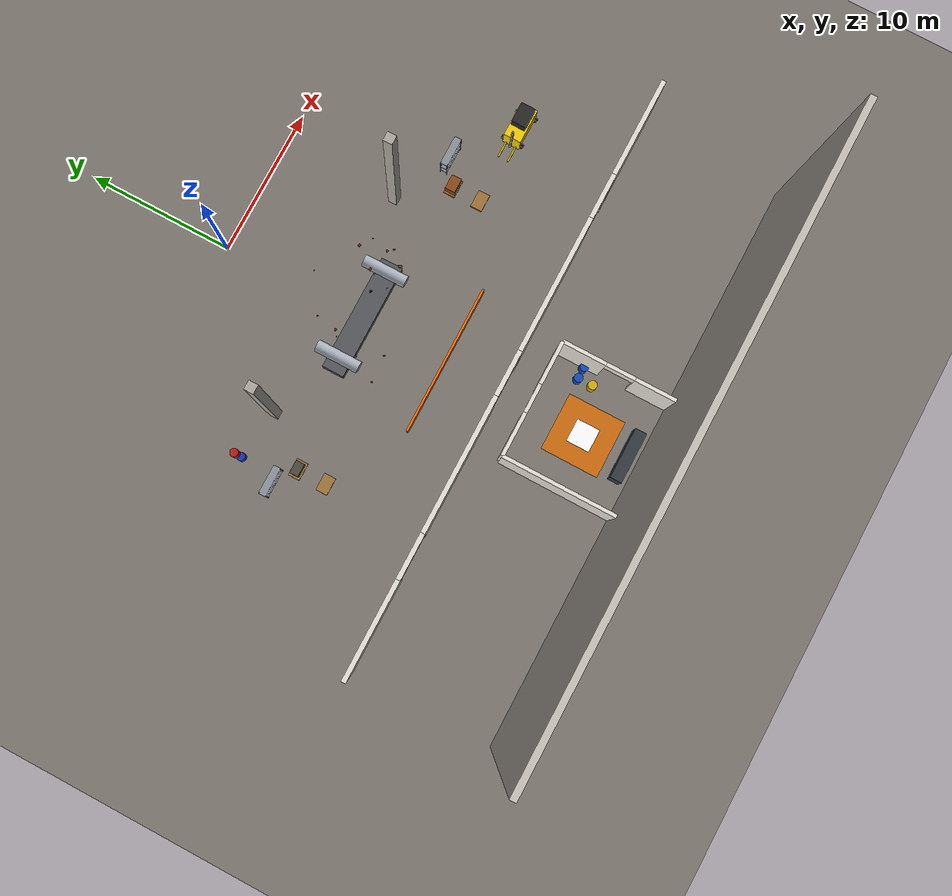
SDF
<sdf version="1.7">
 <world name="wind_tower_world">
  <model name="ground_plane">
   <static>true</static>
   <link name="link">
    <collision name="collision">
     <geometry><plane><normal>0 0 1</normal><size>200 200</size></plane></geometry>
     <surface>
      <friction><ode><mu>0.8</mu><mu2>0.8</mu2></ode></friction>
      <contact><ode><kp>500000</kp><kd>100</kd><max_vel>0.5</max_vel><min_depth>0.002</min_depth></ode></contact>
     </surface>
    </collision>
    <visual name="visual">
     <geometry><plane><normal>0 0 1</normal><size>200 200</size></plane></geometry>
     <material>
      <ambient>0.38 0.37 0.35 1</ambient>
      <diffuse>0.48 0.46 0.43 1</diffuse>
      <specular>0.05 0.05 0.05 1</specular>
     </material>
    </visual>
   </link>
  </model>
  <model name="wall_south">
   <static>true</static>
   <pose>0 -30 9 0 0 0</pose>
   <link name="link">
    <collision name="col"><geometry><box><size>40 0.4 18</size></box></geometry></collision>
    <visual name="vis">
     <geometry><box><size>40 0.4 18</size></box></geometry>
     <material>
      <ambient>0.72 0.70 0.66 1</ambient>
      <diffuse>0.78 0.76 0.72 1</diffuse>
      <specular>0.03 0.03 0.03 1</specular>
     </material>
    </visual>
   </link>
  </model>
  <model name="sep_south_LE">
   <static>true</static>
   <pose>-16.75 -20 4 0 0 0</pose>
   <link name="link">
    <collision name="col"><geometry><box><size>6.5 0.3 8</size></box></geometry></collision>
    <visual name="vis">
     <geometry><box><size>6.5 0.3 8</size></box></geometry>
     <material>
      <ambient>0.86 0.84 0.80 1</ambient>
      <diffuse>0.90 0.88 0.84 1</diffuse>
      <specular>0.04 0.04 0.04 1</specular>
     </material>
    </visual>
   </link>
  </model>
  <model name="sep_south_lintel_L">
   <static>true</static>
   <pose>-12 -20 6.5 0 0 0</pose>
   <link name="link">
    <collision name="col"><geometry><box><size>3.0 0.3 3.0</size></box></geometry></collision>
    <visual name="vis">
     <geometry><box><size>3.0 0.3 3.0</size></box></geometry>
     <material><ambient>0.86 0.84 0.80 1</ambient><diffuse>0.90 0.88 0.84 1</diffuse></material>
    </visual>
   </link>
  </model>
  <model name="sep_south_LM">
   <static>true</static>
   <pose>-6.0 -20 4 0 0 0</pose>
   <link name="link">
    <collision name="col"><geometry><box><size>9.0 0.3 8</size></box></geometry></collision>
    <visual name="vis">
     <geometry><box><size>9.0 0.3 8</size></box></geometry>
     <material>
      <ambient>0.86 0.84 0.80 1</ambient>
      <diffuse>0.90 0.88 0.84 1</diffuse>
      <specular>0.04 0.04 0.04 1</specular>
     </material>
    </visual>
   </link>
  </model>
  <model name="sep_south_lintel">
   <static>true</static>
   <pose>0 -20 6.5 0 0 0</pose>
   <link name="link">
    <collision name="col"><geometry><box><size>3.0 0.3 3.0</size></box></geometry></collision>
    <visual name="vis">
     <geometry><box><size>3.0 0.3 3.0</size></box></geometry>
     <material><ambient>0.86 0.84 0.80 1</ambient><diffuse>0.90 0.88 0.84 1</diffuse></material>
    </visual>
   </link>
  </model>
  <model name="sep_south_RM">
   <static>true</static>
   <pose>6.0 -20 4 0 0 0</pose>
   <link name="link">
    <collision name="col"><geometry><box><size>9.0 0.3 8</size></box></geometry></collision>
    <visual name="vis">
     <geometry><box><size>9.0 0.3 8</size></box></geometry>
     <material>
      <ambient>0.86 0.84 0.80 1</ambient>
      <diffuse>0.90 0.88 0.84 1</diffuse>
      <specular>0.04 0.04 0.04 1</specular>
     </material>
    </visual>
   </link>
  </model>
  <model name="sep_south_lintel_R">
   <static>true</static>
   <pose>12 -20 6.5 0 0 0</pose>
   <link name="link">
    <collision name="col"><geometry><box><size>3.0 0.3 3.0</size></box></geometry></collision>
    <visual name="vis">
     <geometry><box><size>3.0 0.3 3.0</size></box></geometry>
     <material><ambient>0.86 0.84 0.80 1</ambient><diffuse>0.90 0.88 0.84 1</diffuse></material>
    </visual>
   </link>
  </model>
  <model name="sep_south_RE">
   <static>true</static>
   <pose>16.75 -20 4 0 0 0</pose>
   <link name="link">
    <collision name="col"><geometry><box><size>6.5 0.3 8</size></box></geometry></collision>
    <visual name="vis">
     <geometry><box><size>6.5 0.3 8</size></box></geometry>
     <material>
      <ambient>0.86 0.84 0.80 1</ambient>
      <diffuse>0.90 0.88 0.84 1</diffuse>
      <specular>0.04 0.04 0.04 1</specular>
     </material>
    </visual>
   </link>
  </model>
  <model name="ctrl_front_L">
   <static>true</static>
   <pose>-2.5 -22 2 0 0 0</pose>
   <link name="link">
    <collision name="col"><geometry><box><size>3.0 0.25 4</size></box></geometry></collision>
    <visual name="vis">
     <geometry><box><size>3.0 0.25 4</size></box></geometry>
     <material><ambient>0.86 0.84 0.80 1</ambient><diffuse>0.90 0.88 0.84 1</diffuse></material>
    </visual>
   </link>
  </model>
  <model name="ctrl_front_R">
   <static>true</static>
   <pose>2.5 -22 2 0 0 0</pose>
   <link name="link">
    <collision name="col"><geometry><box><size>3.0 0.25 4</size></box></geometry></collision>
    <visual name="vis">
     <geometry><box><size>3.0 0.25 4</size></box></geometry>
     <material><ambient>0.86 0.84 0.80 1</ambient><diffuse>0.90 0.88 0.84 1</diffuse></material>
    </visual>
   </link>
  </model>
  <model name="ctrl_front_lintel">
   <static>true</static>
   <pose>0 -22 3.5 0 0 0</pose>
   <link name="link">
    <collision name="col"><geometry><box><size>2.0 0.25 1.0</size></box></geometry></collision>
    <visual name="vis">
     <geometry><box><size>2.0 0.25 1.0</size></box></geometry>
     <material><ambient>0.86 0.84 0.80 1</ambient><diffuse>0.90 0.88 0.84 1</diffuse></material>
    </visual>
   </link>
  </model>
  <model name="ctrl_wall_W">
   <static>true</static>
   <pose>-4 -26 2 0 0 0</pose>
   <link name="link">
    <collision name="col"><geometry><box><size>0.25 8 4</size></box></geometry></collision>
    <visual name="vis">
     <geometry><box><size>0.25 8 4</size></box></geometry>
     <material><ambient>0.86 0.84 0.80 1</ambient><diffuse>0.90 0.88 0.84 1</diffuse></material>
    </visual>
   </link>
  </model>
  <model name="ctrl_wall_E_N">
   <static>true</static>
   <pose>4 -23.5 2 0 0 0</pose>
   <link name="link">
    <collision name="col"><geometry><box><size>0.25 3 4</size></box></geometry></collision>
    <visual name="vis">
     <geometry><box><size>0.25 3 4</size></box></geometry>
     <material><ambient>0.86 0.84 0.80 1</ambient><diffuse>0.90 0.88 0.84 1</diffuse></material>
    </visual>
   </link>
  </model>
  <model name="ctrl_wall_E_lintel">
   <static>true</static>
   <pose>4 -26 3.5 0 0 0</pose>
   <link name="link">
    <collision name="col"><geometry><box><size>0.25 2 1</size></box></geometry></collision>
    <visual name="vis">
     <geometry><box><size>0.25 2 1</size></box></geometry>
     <material><ambient>0.86 0.84 0.80 1</ambient><diffuse>0.90 0.88 0.84 1</diffuse></material>
    </visual>
   </link>
  </model>
  <model name="ctrl_wall_E_S">
   <static>true</static>
   <pose>4 -28.5 2 0 0 0</pose>
   <link name="link">
    <collision name="col"><geometry><box><size>0.25 3 4</size></box></geometry></collision>
    <visual name="vis">
     <geometry><box><size>0.25 3 4</size></box></geometry>
     <material><ambient>0.86 0.84 0.80 1</ambient><diffuse>0.90 0.88 0.84 1</diffuse></material>
    </visual>
   </link>
  </model>
  <model name="floor_marker_maint">
   <static>true</static>
   <pose>0 -26 0.005 0 0 0</pose>
   <link name="link">
    <collision name="col"><geometry><box><size>4.0 4.0 0.01</size></box></geometry></collision>
    <visual name="vis">
     <geometry><box><size>4.0 4.0 0.01</size></box></geometry>
     <material>
      <ambient>0.75 0.38 0.02 0.85</ambient>
      <diffuse>0.90 0.46 0.03 0.85</diffuse>
      <specular>0.20 0.12 0.02 1</specular>
     </material>
    </visual>
    <visual name="tool_icon_floor">
     <pose>0 0 0.02 0 0 0</pose>
     <geometry><plane><normal>0 0 1</normal><size>1.6 1.6</size></plane></geometry>
     <material>
      <ambient>1 1 1 1</ambient>
      <diffuse>1 1 1 1</diffuse>
      <pbr>
       <metal>
        <albedo_map>file:///home/dmore/ROS2_Wind_Tower_Inspection/ros2_ws/src/wind_tower_inspection_behaviour/static/tool.png</albedo_map>
       </metal>
      </pbr>
     </material>
    </visual>
   </link>
  </model>
  <model name="control_console">
   <static>true</static>
   <pose>0 -29 0.75 0 0 0</pose>
   <link name="link">
    <collision name="col"><geometry><box><size>3.5 0.8 1.5</size></box></geometry></collision>
    <visual name="vis">
     <geometry><box><size>3.5 0.8 1.5</size></box></geometry>
     <material>
      <ambient>0.16 0.18 0.20 1</ambient>
      <diffuse>0.20 0.22 0.25 1</diffuse>
      <specular>0.25 0.25 0.25 1</specular>
     </material>
    </visual>
   </link>
  </model>
  <model name="barrel_blue_1">
   <static>true</static>
   <pose>3 -24 0.5 0 0 0</pose>
   <link name="link">
    <collision name="col">
     <geometry><cylinder><radius>0.3</radius><length>1.0</length></cylinder></geometry>
    </collision>
    <visual name="vis">
     <geometry><cylinder><radius>0.3</radius><length>1.0</length></cylinder></geometry>
     <material>
      <ambient>0.06 0.22 0.60 1</ambient>
      <diffuse>0.08 0.28 0.72 1</diffuse>
      <specular>0.20 0.20 0.20 1</specular>
     </material>
    </visual>
   </link>
  </model>
  <model name="barrel_blue_2">
   <static>true</static>
   <pose>3.8 -24 0.5 0 0 0</pose>
   <link name="link">
    <collision name="col">
     <geometry><cylinder><radius>0.3</radius><length>1.0</length></cylinder></geometry>
    </collision>
    <visual name="vis">
     <geometry><cylinder><radius>0.3</radius><length>1.0</length></cylinder></geometry>
     <material>
      <ambient>0.06 0.22 0.60 1</ambient>
      <diffuse>0.08 0.28 0.72 1</diffuse>
      <specular>0.20 0.20 0.20 1</specular>
     </material>
    </visual>
   </link>
  </model>
  <model name="barrel_yellow">
   <static>true</static>
   <pose>3 -25 0.5 0 0 0</pose>
   <link name="link">
    <collision name="col">
     <geometry><cylinder><radius>0.3</radius><length>1.0</length></cylinder></geometry>
    </collision>
    <visual name="vis">
     <geometry><cylinder><radius>0.3</radius><length>1.0</length></cylinder></geometry>
     <material>
      <ambient>0.72 0.58 0.04 1</ambient>
      <diffuse>0.82 0.68 0.05 1</diffuse>
      <specular>0.20 0.20 0.20 1</specular>
     </material>
    </visual>
   </link>
  </model>
  <model name="column_SE">
   <static>true</static>
   <pose>8 -8 6 0 0 0</pose>
   <link name="link">
    <collision name="col"><geometry><box><size>0.6 0.6 12</size></box></geometry></collision>
    <visual name="vis">
     <geometry><box><size>0.6 0.6 12</size></box></geometry>
     <material>
      <ambient>0.62 0.60 0.57 1</ambient>
      <diffuse>0.68 0.66 0.62 1</diffuse>
      <specular>0.04 0.04 0.04 1</specular>
     </material>
    </visual>
   </link>
  </model>
  <model name="column_SW">
   <static>true</static>
   <pose>-8 -8 6 0 0 0</pose>
   <link name="link">
    <collision name="col"><geometry><box><size>0.6 0.6 12</size></box></geometry></collision>
    <visual name="vis">
     <geometry><box><size>0.6 0.6 12</size></box></geometry>
     <material>
      <ambient>0.62 0.60 0.57 1</ambient>
      <diffuse>0.68 0.66 0.62 1</diffuse>
      <specular>0.04 0.04 0.04 1</specular>
     </material>
    </visual>
   </link>
  </model>
  <model name="barrier_south">
   <static>true</static>
   <pose>0 -16 0.6 0 0 0</pose>
   <link name="link">
    <collision name="col"><geometry><box><size>10.3 0.15 1.2</size></box></geometry></collision>
    <visual name="vis">
     <geometry><box><size>10.3 0.15 1.2</size></box></geometry>
     <material>
      <ambient>0.85 0.35 0.03 1</ambient>
      <diffuse>0.95 0.42 0.04 1</diffuse>
      <specular>0.25 0.25 0.25 1</specular>
     </material>
    </visual>
   </link>
  </model>
  <model name="roller_frame_south">
   <static>true</static>
   <pose>0 -10 0.4 0 0 0</pose>
   <link name="link">
    <collision name="col"><geometry><box><size>8.0 1.5 0.8</size></box></geometry></collision>
    <visual name="vis">
     <geometry><box><size>8.0 1.5 0.8</size></box></geometry>
     <material>
      <ambient>0.28 0.29 0.30 1</ambient>
      <diffuse>0.33 0.34 0.36 1</diffuse>
      <specular>0.12 0.12 0.12 1</specular>
     </material>
    </visual>
   </link>
  </model>
  <model name="roller_S_right">
   <static>true</static>
   <pose>3.11 -10 1.89 1.5708 0 0</pose>
   <link name="link">
    <collision name="col">
     <geometry><cylinder><radius>0.4</radius><length>3.0</length></cylinder></geometry>
    </collision>
    <visual name="vis">
     <geometry><cylinder><radius>0.4</radius><length>3.0</length></cylinder></geometry>
     <material>
      <ambient>0.55 0.57 0.60 1</ambient>
      <diffuse>0.65 0.68 0.72 1</diffuse>
      <specular>0.70 0.70 0.70 1</specular>
     </material>
    </visual>
   </link>
  </model>
  <model name="roller_S_left">
   <static>true</static>
   <pose>-3.11 -10 1.89 1.5708 0 0</pose>
   <link name="link">
    <collision name="col">
     <geometry><cylinder><radius>0.4</radius><length>3.0</length></cylinder></geometry>
    </collision>
    <visual name="vis">
     <geometry><cylinder><radius>0.4</radius><length>3.0</length></cylinder></geometry>
     <material>
      <ambient>0.55 0.57 0.60 1</ambient>
      <diffuse>0.65 0.68 0.72 1</diffuse>
      <specular>0.70 0.70 0.70 1</specular>
     </material>
    </visual>
   </link>
  </model>
  <model name="defect_0002_rust">
   <static>true</static>
   <pose>-0.130619 -7.315413 8.880418 0 0 0</pose>
   <link name="link">
    <visual name="visual">
     <geometry><sphere><radius>0.04238</radius></sphere></geometry>
     <material>
      <ambient>0.55 0.18 0.05 1</ambient>
      <diffuse>0.55 0.18 0.05 1</diffuse>
      <specular>0.1 0.1 0.1 1</specular>
     </material>
     <cast_shadows>false</cast_shadows>
    </visual>
    <collision name="collision">
     <geometry><sphere><radius>0.04238</radius></sphere></geometry>
     <surface><contact><collide_bitmask>0</collide_bitmask></contact></surface>
    </collision>
   </link>
  </model>
  <model name="defect_0006_through_hole">
   <static>true</static>
   <pose>2.208609 -10.588608 1.824345 0 0 0</pose>
   <link name="link">
    <visual name="visual">
     <geometry><sphere><radius>0.05683</radius></sphere></geometry>
     <material>
      <ambient>0.00 0.00 0.00 1</ambient>
      <diffuse>0.00 0.00 0.00 1</diffuse>
      <specular>0.1 0.1 0.1 1</specular>
     </material>
     <cast_shadows>false</cast_shadows>
    </visual>
    <collision name="collision">
     <geometry><sphere><radius>0.05683</radius></sphere></geometry>
     <surface><contact><collide_bitmask>0</collide_bitmask></contact></surface>
    </collision>
   </link>
  </model>
  <model name="defect_0011_rust">
   <static>true</static>
   <pose>3.806809 -10.373963 5.676074 0 0 0</pose>
   <link name="link">
    <visual name="visual">
     <geometry><sphere><radius>0.05862</radius></sphere></geometry>
     <material>
      <ambient>0.55 0.18 0.05 1</ambient>
      <diffuse>0.55 0.18 0.05 1</diffuse>
      <specular>0.1 0.1 0.1 1</specular>
     </material>
     <cast_shadows>false</cast_shadows>
    </visual>
    <collision name="collision">
     <geometry><sphere><radius>0.05862</radius></sphere></geometry>
     <surface><contact><collide_bitmask>0</collide_bitmask></contact></surface>
    </collision>
   </link>
  </model>
  <model name="defect_0014_rust">
   <static>true</static>
   <pose>2.629065 -8.751535 7.780543 0 0 0</pose>
   <link name="link">
    <visual name="visual">
     <geometry><sphere><radius>0.09833</radius></sphere></geometry>
     <material>
      <ambient>0.55 0.18 0.05 1</ambient>
      <diffuse>0.55 0.18 0.05 1</diffuse>
      <specular>0.1 0.1 0.1 1</specular>
     </material>
     <cast_shadows>false</cast_shadows>
    </visual>
    <collision name="collision">
     <geometry><sphere><radius>0.09833</radius></sphere></geometry>
     <surface><contact><collide_bitmask>0</collide_bitmask></contact></surface>
    </collision>
   </link>
  </model>
  <model name="defect_0017_rust">
   <static>true</static>
   <pose>-1.356370 -7.514446 1.382333 0 0 0</pose>
   <link name="link">
    <visual name="visual">
     <geometry><sphere><radius>0.06142</radius></sphere></geometry>
     <material>
      <ambient>0.55 0.18 0.05 1</ambient>
      <diffuse>0.55 0.18 0.05 1</diffuse>
      <specular>0.1 0.1 0.1 1</specular>
     </material>
     <cast_shadows>false</cast_shadows>
    </visual>
    <collision name="collision">
     <geometry><sphere><radius>0.06142</radius></sphere></geometry>
     <surface><contact><collide_bitmask>0</collide_bitmask></contact></surface>
    </collision>
   </link>
  </model>
  <model name="defect_0022_rust">
   <static>true</static>
   <pose>-2.786298 -10.149123 7.701943 0 0 0</pose>
   <link name="link">
    <visual name="visual">
     <geometry><sphere><radius>0.04377</radius></sphere></geometry>
     <material>
      <ambient>0.55 0.18 0.05 1</ambient>
      <diffuse>0.55 0.18 0.05 1</diffuse>
      <specular>0.1 0.1 0.1 1</specular>
     </material>
     <cast_shadows>false</cast_shadows>
    </visual>
    <collision name="collision">
     <geometry><sphere><radius>0.04377</radius></sphere></geometry>
     <surface><contact><collide_bitmask>0</collide_bitmask></contact></surface>
    </collision>
   </link>
  </model>
  <model name="defect_0023_pitting">
   <static>true</static>
   <pose>2.635481 -11.348280 7.864352 0 0 0</pose>
   <link name="link">
    <visual name="visual">
     <geometry><sphere><radius>0.03266</radius></sphere></geometry>
     <material>
      <ambient>0.15 0.15 0.15 1</ambient>
      <diffuse>0.15 0.15 0.15 1</diffuse>
      <specular>0.1 0.1 0.1 1</specular>
     </material>
     <cast_shadows>false</cast_shadows>
    </visual>
    <collision name="collision">
     <geometry><sphere><radius>0.03266</radius></sphere></geometry>
     <surface><contact><collide_bitmask>0</collide_bitmask></contact></surface>
    </collision>
   </link>
  </model>
  <model name="defect_0026_rust">
   <static>true</static>
   <pose>1.527743 -10.099643 8.516168 0 0 0</pose>
   <link name="link">
    <visual name="visual">
     <geometry><sphere><radius>0.09128</radius></sphere></geometry>
     <material>
      <ambient>0.55 0.18 0.05 1</ambient>
      <diffuse>0.55 0.18 0.05 1</diffuse>
      <specular>0.1 0.1 0.1 1</specular>
     </material>
     <cast_shadows>false</cast_shadows>
    </visual>
    <collision name="collision">
     <geometry><sphere><radius>0.09128</radius></sphere></geometry>
     <surface><contact><collide_bitmask>0</collide_bitmask></contact></surface>
    </collision>
   </link>
  </model>
  <model name="defect_0031_rust">
   <static>true</static>
   <pose>-1.662861 -12.493605 1.517573 0 0 0</pose>
   <link name="link">
    <visual name="visual">
     <geometry><sphere><radius>0.06593</radius></sphere></geometry>
     <material>
      <ambient>0.55 0.18 0.05 1</ambient>
      <diffuse>0.55 0.18 0.05 1</diffuse>
      <specular>0.1 0.1 0.1 1</specular>
     </material>
     <cast_shadows>false</cast_shadows>
    </visual>
    <collision name="collision">
     <geometry><sphere><radius>0.06593</radius></sphere></geometry>
     <surface><contact><collide_bitmask>0</collide_bitmask></contact></surface>
    </collision>
   </link>
  </model>
  <model name="defect_0033_through_hole">
   <static>true</static>
   <pose>0.337371 -10.773010 8.822794 0 0 0</pose>
   <link name="link">
    <visual name="visual">
     <geometry><sphere><radius>0.08735</radius></sphere></geometry>
     <material>
      <ambient>0.00 0.00 0.00 1</ambient>
      <diffuse>0.00 0.00 0.00 1</diffuse>
      <specular>0.1 0.1 0.1 1</specular>
     </material>
     <cast_shadows>false</cast_shadows>
    </visual>
    <collision name="collision">
     <geometry><sphere><radius>0.08735</radius></sphere></geometry>
     <surface><contact><collide_bitmask>0</collide_bitmask></contact></surface>
    </collision>
   </link>
  </model>
  <model name="defect_0038_rust">
   <static>true</static>
   <pose>3.795123 -9.853891 4.391511 0 0 0</pose>
   <link name="link">
    <visual name="visual">
     <geometry><sphere><radius>0.08141</radius></sphere></geometry>
     <material>
      <ambient>0.55 0.18 0.05 1</ambient>
      <diffuse>0.55 0.18 0.05 1</diffuse>
      <specular>0.1 0.1 0.1 1</specular>
     </material>
     <cast_shadows>false</cast_shadows>
    </visual>
    <collision name="collision">
     <geometry><sphere><radius>0.08141</radius></sphere></geometry>
     <surface><contact><collide_bitmask>0</collide_bitmask></contact></surface>
    </collision>
   </link>
  </model>
  <model name="defect_0054_pitting">
   <static>true</static>
   <pose>3.717410 -8.975283 6.123401 0 0 0</pose>
   <link name="link">
    <visual name="visual">
     <geometry><sphere><radius>0.04155</radius></sphere></geometry>
     <material>
      <ambient>0.15 0.15 0.15 1</ambient>
      <diffuse>0.15 0.15 0.15 1</diffuse>
      <specular>0.1 0.1 0.1 1</specular>
     </material>
     <cast_shadows>false</cast_shadows>
    </visual>
    <collision name="collision">
     <geometry><sphere><radius>0.04155</radius></sphere></geometry>
     <surface><contact><collide_bitmask>0</collide_bitmask></contact></surface>
    </collision>
   </link>
  </model>
  <model name="defect_0057_rust">
   <static>true</static>
   <pose>3.502728 -10.917102 3.505742 0 0 0</pose>
   <link name="link">
    <visual name="visual">
     <geometry><sphere><radius>0.11686</radius></sphere></geometry>
     <material>
      <ambient>0.55 0.18 0.05 1</ambient>
      <diffuse>0.55 0.18 0.05 1</diffuse>
      <specular>0.1 0.1 0.1 1</specular>
     </material>
     <cast_shadows>false</cast_shadows>
    </visual>
    <collision name="collision">
     <geometry><sphere><radius>0.11686</radius></sphere></geometry>
     <surface><contact><collide_bitmask>0</collide_bitmask></contact></surface>
    </collision>
   </link>
  </model>
  <model name="defect_0068_pitting">
   <static>true</static>
   <pose>2.571618 -9.508431 2.098861 0 0 0</pose>
   <link name="link">
    <visual name="visual">
     <geometry><sphere><radius>0.04817</radius></sphere></geometry>
     <material>
      <ambient>0.15 0.15 0.15 1</ambient>
      <diffuse>0.15 0.15 0.15 1</diffuse>
      <specular>0.1 0.1 0.1 1</specular>
     </material>
     <cast_shadows>false</cast_shadows>
    </visual>
    <collision name="collision">
     <geometry><sphere><radius>0.04817</radius></sphere></geometry>
     <surface><contact><collide_bitmask>0</collide_bitmask></contact></surface>
    </collision>
   </link>
  </model>
  <model name="defect_0072_rust">
   <static>true</static>
   <pose>-3.828906 -12.907812 4.488916 0 0 0</pose>
   <link name="link">
    <visual name="visual">
     <geometry><sphere><radius>0.06213</radius></sphere></geometry>
     <material>
      <ambient>0.55 0.18 0.05 1</ambient>
      <diffuse>0.55 0.18 0.05 1</diffuse>
      <specular>0.1 0.1 0.1 1</specular>
     </material>
     <cast_shadows>false</cast_shadows>
    </visual>
    <collision name="collision">
     <geometry><sphere><radius>0.06213</radius></sphere></geometry>
     <surface><contact><collide_bitmask>0</collide_bitmask></contact></surface>
    </collision>
   </link>
  </model>
  <model name="defect_0074_rust">
   <static>true</static>
   <pose>-2.603168 -11.043660 2.117166 0 0 0</pose>
   <link name="link">
    <visual name="visual">
     <geometry><sphere><radius>0.04077</radius></sphere></geometry>
     <material>
      <ambient>0.55 0.18 0.05 1</ambient>
      <diffuse>0.55 0.18 0.05 1</diffuse>
      <specular>0.1 0.1 0.1 1</specular>
     </material>
     <cast_shadows>false</cast_shadows>
    </visual>
    <collision name="collision">
     <geometry><sphere><radius>0.04077</radius></sphere></geometry>
     <surface><contact><collide_bitmask>0</collide_bitmask></contact></surface>
    </collision>
   </link>
  </model>
  <model name="defect_0079_rust">
   <static>true</static>
   <pose>-1.635605 -8.981613 1.530896 0 0 0</pose>
   <link name="link">
    <visual name="visual">
     <geometry><sphere><radius>0.08965</radius></sphere></geometry>
     <material>
      <ambient>0.55 0.18 0.05 1</ambient>
      <diffuse>0.55 0.18 0.05 1</diffuse>
      <specular>0.1 0.1 0.1 1</specular>
     </material>
     <cast_shadows>false</cast_shadows>
    </visual>
    <collision name="collision">
     <geometry><sphere><radius>0.08965</radius></sphere></geometry>
     <surface><contact><collide_bitmask>0</collide_bitmask></contact></surface>
    </collision>
   </link>
  </model>
  <model name="person_col_1">
   <pose>-9.2 -18.0 0 0 0 0</pose>
   <static>false</static>
   <link name="body">
    <inertial>
     <mass>75.0</mass>
     <inertia><ixx>15.0</ixx><ixy>0</ixy><ixz>0</ixz><iyy>15.0</iyy><iyz>0</iyz><izz>2.5</izz></inertia>
     <pose>0 0 0.85 0 0 0</pose>
    </inertial>
    <collision name="col_torso">
     <pose>0 0 0.75 0 0 0</pose>
     <geometry><cylinder><radius>0.25</radius><length>1.30</length></cylinder></geometry>
     <surface>
      <contact><collide_bitmask>0x01</collide_bitmask></contact>
      <friction><ode><mu>0.0</mu><mu2>0.0</mu2></ode></friction>
     </surface>
    </collision>
    <collision name="col_head">
     <pose>0 0 1.55 0 0 0</pose>
     <geometry><sphere><radius>0.14</radius></sphere></geometry>
     <surface>
      <contact><collide_bitmask>0x01</collide_bitmask></contact>
      <friction><ode><mu>0.0</mu><mu2>0.0</mu2></ode></friction>
     </surface>
    </collision>
   </link>
   <joint name="world_fixed" type="fixed"><parent>world</parent><child>body</child></joint>
  </model>
  <model name="person_col_3">
   <pose>6.9 -18.0 0 0 0 0</pose>
   <static>false</static>
   <link name="body">
    <inertial>
     <mass>75.0</mass>
     <inertia><ixx>15.0</ixx><ixy>0</ixy><ixz>0</ixz><iyy>15.0</iyy><iyz>0</iyz><izz>2.5</izz></inertia>
     <pose>0 0 0.85 0 0 0</pose>
    </inertial>
    <collision name="col_torso">
     <pose>0 0 0.75 0 0 0</pose>
     <geometry><cylinder><radius>0.25</radius><length>1.30</length></cylinder></geometry>
     <surface>
      <contact><collide_bitmask>0x01</collide_bitmask></contact>
      <friction><ode><mu>0.0</mu><mu2>0.0</mu2></ode></friction>
     </surface>
    </collision>
    <collision name="col_head">
     <pose>0 0 1.55 0 0 0</pose>
     <geometry><sphere><radius>0.14</radius></sphere></geometry>
     <surface>
      <contact><collide_bitmask>0x01</collide_bitmask></contact>
      <friction><ode><mu>0.0</mu><mu2>0.0</mu2></ode></friction>
     </surface>
    </collision>
   </link>
   <joint name="world_fixed" type="fixed"><parent>world</parent><child>body</child></joint>
  </model>
  <model name="forklift">
   <pose>16.0 -13.0 0.0 0 0 1.5708</pose>
   <static>false</static>
   <link name="body">
    <inertial>
     <mass>3500.0</mass>
     <inertia><ixx>800.0</ixx><ixy>0</ixy><ixz>0</ixz><iyy>1200.0</iyy><iyz>0</iyz><izz>600.0</izz></inertia>
     <pose>0 0 0.7 0 0 0</pose>
    </inertial>
    <visual name="chassis_vis">
     <pose>0 0 0.7 0 0 0</pose>
     <geometry><box><size>1.2 2.4 1.4</size></box></geometry>
     <material>
      <ambient>0.95 0.80 0.02 1</ambient>
      <diffuse>0.95 0.80 0.02 1</diffuse>
      <specular>0.4 0.35 0.01 1</specular>
     </material>
    </visual>
    <collision name="chassis_col">
     <pose>0 0 0.7 0 0 0</pose>
     <geometry><box><size>1.2 2.4 1.4</size></box></geometry>
    </collision>
    <visual name="cabin_vis">
     <pose>0 -0.3 1.65 0 0 0</pose>
     <geometry><box><size>1.0 1.4 0.8</size></box></geometry>
     <material>
      <ambient>0.15 0.15 0.15 1</ambient>
      <diffuse>0.15 0.15 0.15 1</diffuse>
      <specular>0.1 0.1 0.1 1</specular>
     </material>
    </visual>
    <collision name="cabin_col">
     <pose>0 -0.3 1.65 0 0 0</pose>
     <geometry><box><size>1.0 1.4 0.8</size></box></geometry>
    </collision>
    <visual name="mast_vis">
     <pose>0 1.3 1.4 0 0 0</pose>
     <geometry><box><size>0.12 0.12 2.8</size></box></geometry>
     <material><ambient>0.55 0.55 0.55 1</ambient><diffuse>0.55 0.55 0.55 1</diffuse></material>
    </visual>
    <collision name="mast_col">
     <pose>0 1.3 1.4 0 0 0</pose>
     <geometry><box><size>0.12 0.12 2.8</size></box></geometry>
    </collision>
    <visual name="fork_left_vis">
     <pose>-0.35 1.55 0.15 0 0 0</pose>
     <geometry><box><size>0.12 1.5 0.08</size></box></geometry>
     <material><ambient>0.75 0.65 0.02 1</ambient><diffuse>0.75 0.65 0.02 1</diffuse></material>
    </visual>
    <collision name="fork_left_col">
     <pose>-0.35 1.55 0.15 0 0 0</pose>
     <geometry><box><size>0.12 1.5 0.08</size></box></geometry>
    </collision>
    <visual name="fork_right_vis">
     <pose>0.35 1.55 0.15 0 0 0</pose>
     <geometry><box><size>0.12 1.5 0.08</size></box></geometry>
     <material><ambient>0.75 0.65 0.02 1</ambient><diffuse>0.75 0.65 0.02 1</diffuse></material>
    </visual>
    <collision name="fork_right_col">
     <pose>0.35 1.55 0.15 0 0 0</pose>
     <geometry><box><size>0.12 1.5 0.08</size></box></geometry>
    </collision>
    <visual name="wheel_fl_vis">
     <pose>-0.55 1.0 0.25 1.5708 0 0</pose>
     <geometry><cylinder><radius>0.25</radius><length>0.2</length></cylinder></geometry>
     <material><ambient>0.08 0.08 0.08 1</ambient><diffuse>0.08 0.08 0.08 1</diffuse></material>
    </visual>
    <collision name="wheel_fl_col">
     <pose>-0.55 1.0 0.25 1.5708 0 0</pose>
     <geometry><cylinder><radius>0.25</radius><length>0.2</length></cylinder></geometry>
    </collision>
    <visual name="wheel_fr_vis">
     <pose>0.55 1.0 0.25 1.5708 0 0</pose>
     <geometry><cylinder><radius>0.25</radius><length>0.2</length></cylinder></geometry>
     <material><ambient>0.08 0.08 0.08 1</ambient><diffuse>0.08 0.08 0.08 1</diffuse></material>
    </visual>
    <collision name="wheel_fr_col">
     <pose>0.55 1.0 0.25 1.5708 0 0</pose>
     <geometry><cylinder><radius>0.25</radius><length>0.2</length></cylinder></geometry>
    </collision>
    <visual name="wheel_rl_vis">
     <pose>-0.55 -1.0 0.25 1.5708 0 0</pose>
     <geometry><cylinder><radius>0.25</radius><length>0.2</length></cylinder></geometry>
     <material><ambient>0.08 0.08 0.08 1</ambient><diffuse>0.08 0.08 0.08 1</diffuse></material>
    </visual>
    <collision name="wheel_rl_col">
     <pose>-0.55 -1.0 0.25 1.5708 0 0</pose>
     <geometry><cylinder><radius>0.25</radius><length>0.2</length></cylinder></geometry>
    </collision>
    <visual name="wheel_rr_vis">
     <pose>0.55 -1.0 0.25 1.5708 0 0</pose>
     <geometry><cylinder><radius>0.25</radius><length>0.2</length></cylinder></geometry>
     <material><ambient>0.08 0.08 0.08 1</ambient><diffuse>0.08 0.08 0.08 1</diffuse></material>
    </visual>
    <collision name="wheel_rr_col">
     <pose>0.55 -1.0 0.25 1.5708 0 0</pose>
     <geometry><cylinder><radius>0.25</radius><length>0.2</length></cylinder></geometry>
    </collision>
    <visual name="beacon_vis">
     <pose>0 1.25 2.1 0 0 0</pose>
     <geometry><cylinder><radius>0.08</radius><length>0.15</length></cylinder></geometry>
     <material>
      <ambient>1.0 0.55 0.0 1</ambient>
      <diffuse>1.0 0.55 0.0 1</diffuse>
      <emissive>0.8 0.4 0.0 1</emissive>
     </material>
    </visual>
   </link>
   <plugin name="gz::sim::systems::TrajectoryFollower" filename="libgz-sim-trajectory-follower-system.so">
    <link_name>body</link_name>
    <loop>true</loop>
    <waypoint><time>0</time><pose>16.0 -13.0 0.0 0 0 1.5708</pose></waypoint>
    <waypoint><time>52</time><pose>16.0 13.0 0.0 0 0 1.5708</pose></waypoint>
    <waypoint><time>104</time><pose>16.0 -13.0 0.0 0 0 1.5708</pose></waypoint>
   </plugin>
  </model>
  <model name="rack_w1">
   <pose>-12.0 -10.0 0 0 0 0</pose>
   <static>true</static>
   <link name="link">
    <visual name="shelf1_vis">
     <pose>0 0 0.6 0 0 0</pose>
     <geometry><box><size>2.0 0.5 0.05</size></box></geometry>
     <material><ambient>0.55 0.57 0.60 1</ambient><diffuse>0.55 0.57 0.60 1</diffuse></material>
    </visual>
    <collision name="shelf1_col">
     <pose>0 0 0.6 0 0 0</pose>
     <geometry><box><size>2.0 0.5 0.05</size></box></geometry>
    </collision>
    <visual name="shelf2_vis">
     <pose>0 0 1.2 0 0 0</pose>
     <geometry><box><size>2.0 0.5 0.05</size></box></geometry>
     <material><ambient>0.55 0.57 0.60 1</ambient><diffuse>0.55 0.57 0.60 1</diffuse></material>
    </visual>
    <collision name="shelf2_col">
     <pose>0 0 1.2 0 0 0</pose>
     <geometry><box><size>2.0 0.5 0.05</size></box></geometry>
    </collision>
    <visual name="shelf3_vis">
     <pose>0 0 1.95 0 0 0</pose>
     <geometry><box><size>2.0 0.5 0.05</size></box></geometry>
     <material><ambient>0.55 0.57 0.60 1</ambient><diffuse>0.55 0.57 0.60 1</diffuse></material>
    </visual>
    <collision name="shelf3_col">
     <pose>0 0 1.95 0 0 0</pose>
     <geometry><box><size>2.0 0.5 0.05</size></box></geometry>
    </collision>
    <visual name="leg_fl">
     <pose>-0.95 -0.22 1.0 0 0 0</pose>
     <geometry><box><size>0.05 0.05 2.0</size></box></geometry>
     <material><ambient>0.40 0.42 0.45 1</ambient><diffuse>0.40 0.42 0.45 1</diffuse></material>
    </visual>
    <collision name="leg_fl_col">
     <pose>-0.95 -0.22 1.0 0 0 0</pose>
     <geometry><box><size>0.05 0.05 2.0</size></box></geometry>
    </collision>
    <visual name="leg_fr">
     <pose>0.95 -0.22 1.0 0 0 0</pose>
     <geometry><box><size>0.05 0.05 2.0</size></box></geometry>
     <material><ambient>0.40 0.42 0.45 1</ambient><diffuse>0.40 0.42 0.45 1</diffuse></material>
    </visual>
    <collision name="leg_fr_col">
     <pose>0.95 -0.22 1.0 0 0 0</pose>
     <geometry><box><size>0.05 0.05 2.0</size></box></geometry>
    </collision>
    <visual name="leg_bl">
     <pose>-0.95 0.22 1.0 0 0 0</pose>
     <geometry><box><size>0.05 0.05 2.0</size></box></geometry>
     <material><ambient>0.40 0.42 0.45 1</ambient><diffuse>0.40 0.42 0.45 1</diffuse></material>
    </visual>
    <collision name="leg_bl_col">
     <pose>-0.95 0.22 1.0 0 0 0</pose>
     <geometry><box><size>0.05 0.05 2.0</size></box></geometry>
    </collision>
    <visual name="leg_br">
     <pose>0.95 0.22 1.0 0 0 0</pose>
     <geometry><box><size>0.05 0.05 2.0</size></box></geometry>
     <material><ambient>0.40 0.42 0.45 1</ambient><diffuse>0.40 0.42 0.45 1</diffuse></material>
    </visual>
    <collision name="leg_br_col">
     <pose>0.95 0.22 1.0 0 0 0</pose>
     <geometry><box><size>0.05 0.05 2.0</size></box></geometry>
    </collision>
   </link>
  </model>
  <model name="rack_e1">
   <pose>12.0 -10.0 0 0 0 0</pose>
   <static>true</static>
   <link name="link">
    <visual name="shelf1_vis">
     <pose>0 0 0.6 0 0 0</pose>
     <geometry><box><size>2.0 0.5 0.05</size></box></geometry>
     <material><ambient>0.55 0.57 0.60 1</ambient><diffuse>0.55 0.57 0.60 1</diffuse></material>
    </visual>
    <collision name="shelf1_col">
     <pose>0 0 0.6 0 0 0</pose>
     <geometry><box><size>2.0 0.5 0.05</size></box></geometry>
    </collision>
    <visual name="shelf2_vis">
     <pose>0 0 1.2 0 0 0</pose>
     <geometry><box><size>2.0 0.5 0.05</size></box></geometry>
     <material><ambient>0.55 0.57 0.60 1</ambient><diffuse>0.55 0.57 0.60 1</diffuse></material>
    </visual>
    <collision name="shelf2_col">
     <pose>0 0 1.2 0 0 0</pose>
     <geometry><box><size>2.0 0.5 0.05</size></box></geometry>
    </collision>
    <visual name="shelf3_vis">
     <pose>0 0 1.95 0 0 0</pose>
     <geometry><box><size>2.0 0.5 0.05</size></box></geometry>
     <material><ambient>0.55 0.57 0.60 1</ambient><diffuse>0.55 0.57 0.60 1</diffuse></material>
    </visual>
    <collision name="shelf3_col">
     <pose>0 0 1.95 0 0 0</pose>
     <geometry><box><size>2.0 0.5 0.05</size></box></geometry>
    </collision>
    <visual name="leg_fl">
     <pose>-0.95 -0.22 1.0 0 0 0</pose>
     <geometry><box><size>0.05 0.05 2.0</size></box></geometry>
     <material><ambient>0.40 0.42 0.45 1</ambient><diffuse>0.40 0.42 0.45 1</diffuse></material>
    </visual>
    <collision name="leg_fl_col">
     <pose>-0.95 -0.22 1.0 0 0 0</pose>
     <geometry><box><size>0.05 0.05 2.0</size></box></geometry>
    </collision>
    <visual name="leg_fr">
     <pose>0.95 -0.22 1.0 0 0 0</pose>
     <geometry><box><size>0.05 0.05 2.0</size></box></geometry>
     <material><ambient>0.40 0.42 0.45 1</ambient><diffuse>0.40 0.42 0.45 1</diffuse></material>
    </visual>
    <collision name="leg_fr_col">
     <pose>0.95 -0.22 1.0 0 0 0</pose>
     <geometry><box><size>0.05 0.05 2.0</size></box></geometry>
    </collision>
    <visual name="leg_bl">
     <pose>-0.95 0.22 1.0 0 0 0</pose>
     <geometry><box><size>0.05 0.05 2.0</size></box></geometry>
     <material><ambient>0.40 0.42 0.45 1</ambient><diffuse>0.40 0.42 0.45 1</diffuse></material>
    </visual>
    <collision name="leg_bl_col">
     <pose>-0.95 0.22 1.0 0 0 0</pose>
     <geometry><box><size>0.05 0.05 2.0</size></box></geometry>
    </collision>
    <visual name="leg_br">
     <pose>0.95 0.22 1.0 0 0 0</pose>
     <geometry><box><size>0.05 0.05 2.0</size></box></geometry>
     <material><ambient>0.40 0.42 0.45 1</ambient><diffuse>0.40 0.42 0.45 1</diffuse></material>
    </visual>
    <collision name="leg_br_col">
     <pose>0.95 0.22 1.0 0 0 0</pose>
     <geometry><box><size>0.05 0.05 2.0</size></box></geometry>
    </collision>
   </link>
  </model>
  <model name="pallet_w1">
   <pose>-10.5 -13.0 0.075 0 0 0</pose>
   <static>true</static>
   <link name="link">
    <visual name="vis">
     <geometry><box><size>1.2 0.8 0.15</size></box></geometry>
     <material><ambient>0.62 0.45 0.22 1</ambient><diffuse>0.62 0.45 0.22 1</diffuse></material>
    </visual>
    <collision name="col"><geometry><box><size>1.2 0.8 0.15</size></box></geometry></collision>
   </link>
  </model>
  <model name="pallet_w2">
   <pose>-10.5 -11.0 0.075 0 0 0</pose>
   <static>true</static>
   <link name="link">
    <visual name="vis">
     <geometry><box><size>1.2 0.8 0.15</size></box></geometry>
     <material><ambient>0.62 0.45 0.22 1</ambient><diffuse>0.62 0.45 0.22 1</diffuse></material>
    </visual>
    <collision name="col"><geometry><box><size>1.2 0.8 0.15</size></box></geometry></collision>
    <visual name="box_vis">
     <pose>0 0 0.475 0 0 0</pose>
     <geometry><box><size>0.9 0.6 0.65</size></box></geometry>
     <material><ambient>0.30 0.28 0.25 1</ambient><diffuse>0.30 0.28 0.25 1</diffuse></material>
    </visual>
    <collision name="box_col">
     <pose>0 0 0.475 0 0 0</pose>
     <geometry><box><size>0.9 0.6 0.65</size></box></geometry>
    </collision>
   </link>
  </model>
  <model name="pallet_e1">
   <pose>10.5 -13.0 0.075 0 0 0</pose>
   <static>true</static>
   <link name="link">
    <visual name="vis">
     <geometry><box><size>1.2 0.8 0.15</size></box></geometry>
     <material><ambient>0.62 0.45 0.22 1</ambient><diffuse>0.62 0.45 0.22 1</diffuse></material>
    </visual>
    <collision name="col"><geometry><box><size>1.2 0.8 0.15</size></box></geometry></collision>
   </link>
  </model>
  <model name="pallet_e2">
   <pose>10.5 -11.0 0.075 0 0 0</pose>
   <static>true</static>
   <link name="link">
    <visual name="vis">
     <geometry><box><size>1.2 0.8 0.15</size></box></geometry>
     <material><ambient>0.62 0.45 0.22 1</ambient><diffuse>0.62 0.45 0.22 1</diffuse></material>
    </visual>
    <collision name="col"><geometry><box><size>1.2 0.8 0.15</size></box></geometry></collision>
    <visual name="box_vis">
     <pose>0 0 0.475 0 0 0</pose>
     <geometry><box><size>1.0 0.7 0.65</size></box></geometry>
     <material><ambient>0.55 0.28 0.10 1</ambient><diffuse>0.55 0.28 0.10 1</diffuse></material>
    </visual>
    <collision name="box_col">
     <pose>0 0 0.475 0 0 0</pose>
     <geometry><box><size>1.0 0.7 0.65</size></box></geometry>
    </collision>
   </link>
  </model>
  <model name="barrel_w1">
   <pose>-11.5 -7.5 0.44 0 0 0</pose>
   <static>true</static>
   <link name="link">
    <visual name="vis">
     <geometry><cylinder><radius>0.28</radius><length>0.88</length></cylinder></geometry>
     <material><ambient>0.10 0.20 0.70 1</ambient><diffuse>0.10 0.20 0.70 1</diffuse></material>
    </visual>
    <collision name="col">
     <geometry><cylinder><radius>0.28</radius><length>0.88</length></cylinder></geometry>
    </collision>
   </link>
  </model>
  <model name="barrel_w3">
   <pose>-11.5 -7.15 1.32 0 0 0</pose>
   <static>true</static>
   <link name="link">
    <visual name="vis">
     <geometry><cylinder><radius>0.28</radius><length>0.88</length></cylinder></geometry>
     <material><ambient>0.70 0.10 0.10 1</ambient><diffuse>0.70 0.10 0.10 1</diffuse></material>
    </visual>
    <collision name="col">
     <geometry><cylinder><radius>0.28</radius><length>0.88</length></cylinder></geometry>
    </collision>
   </link>
  </model>
 </world>
</sdf>
